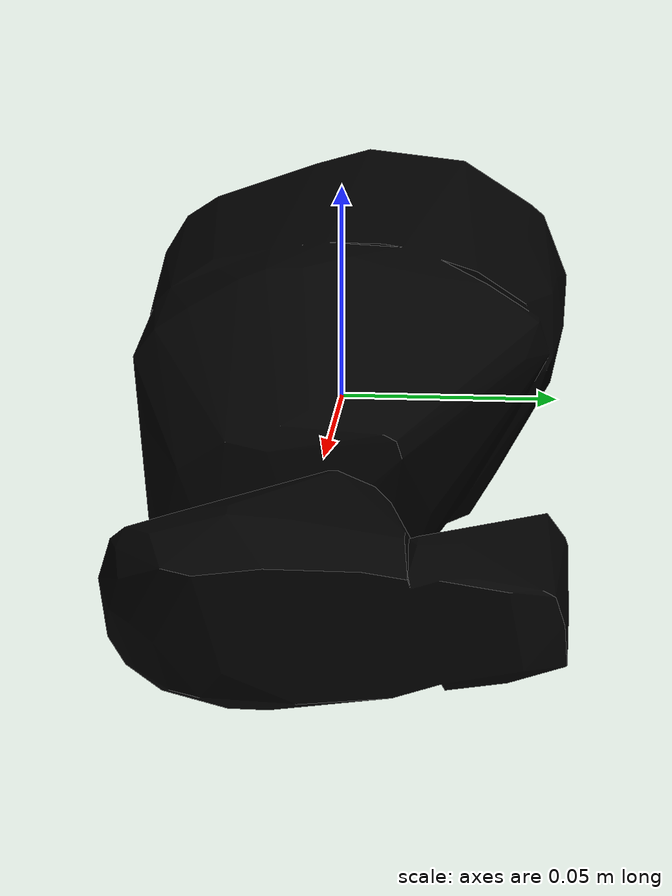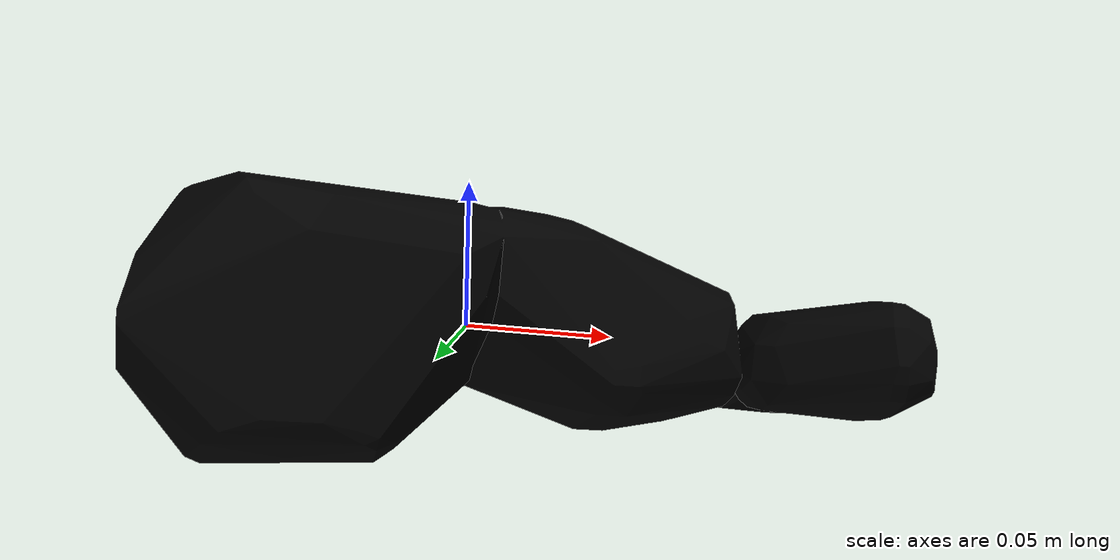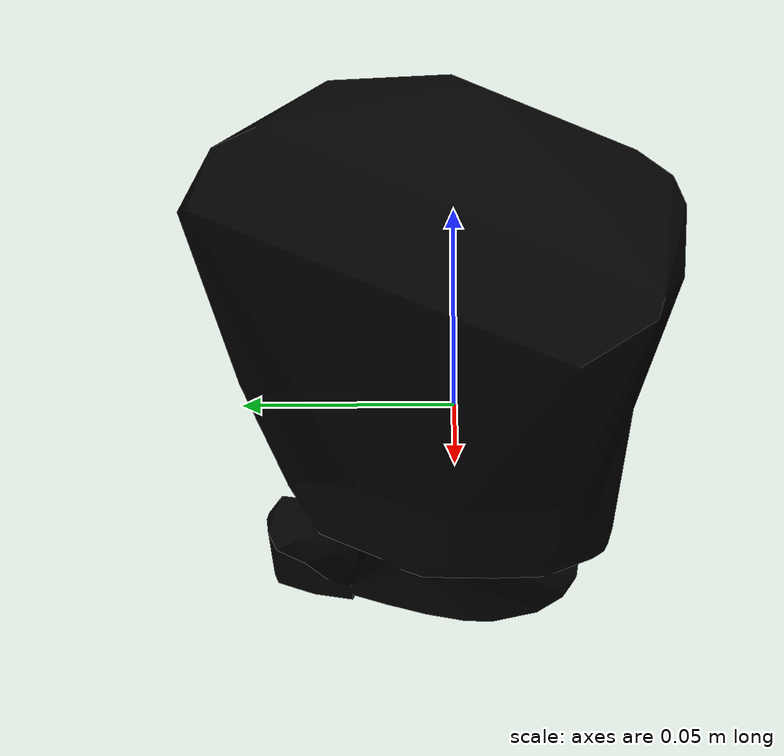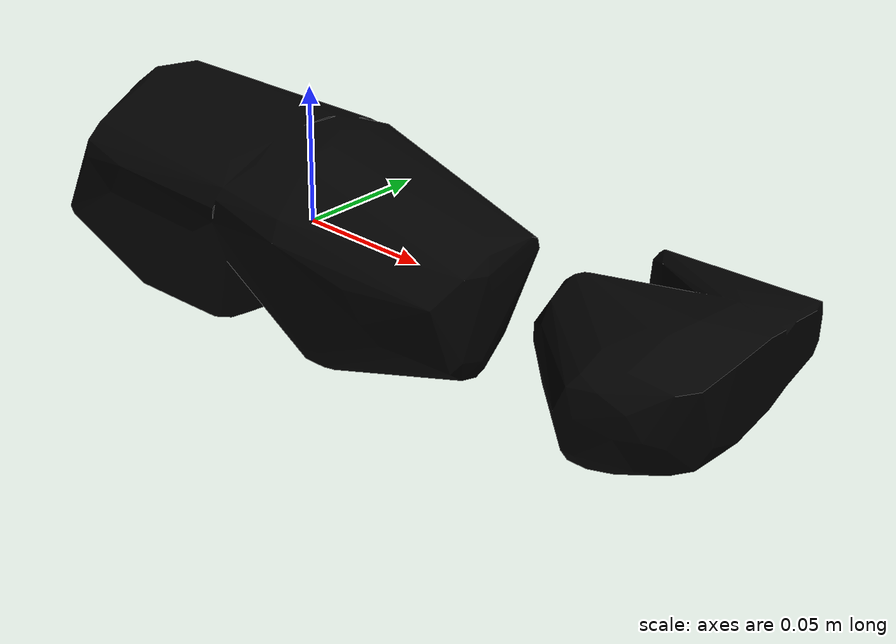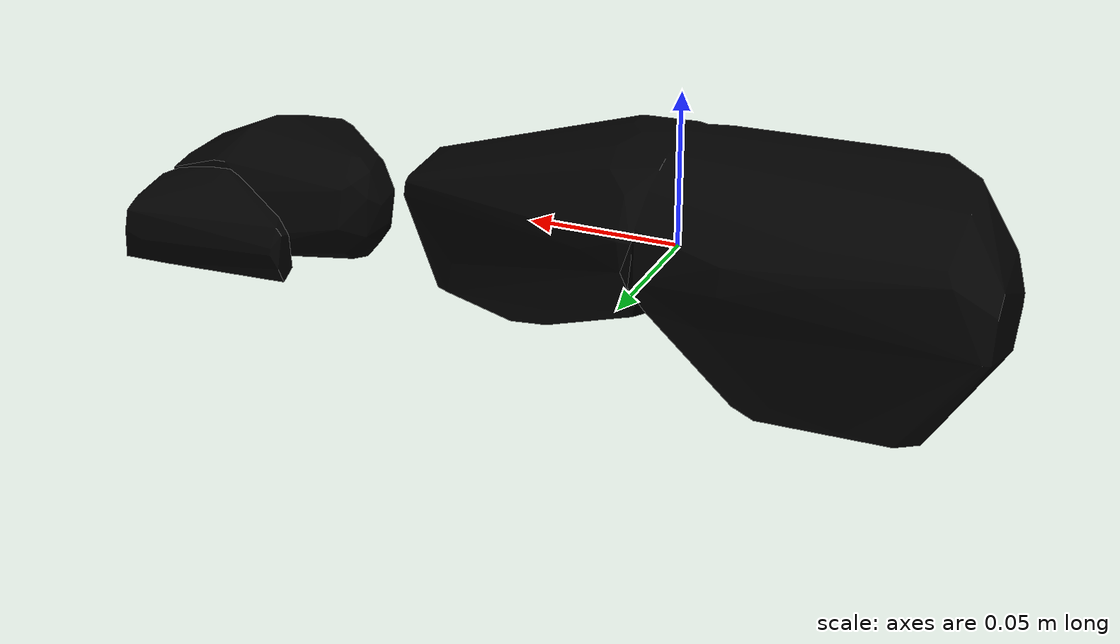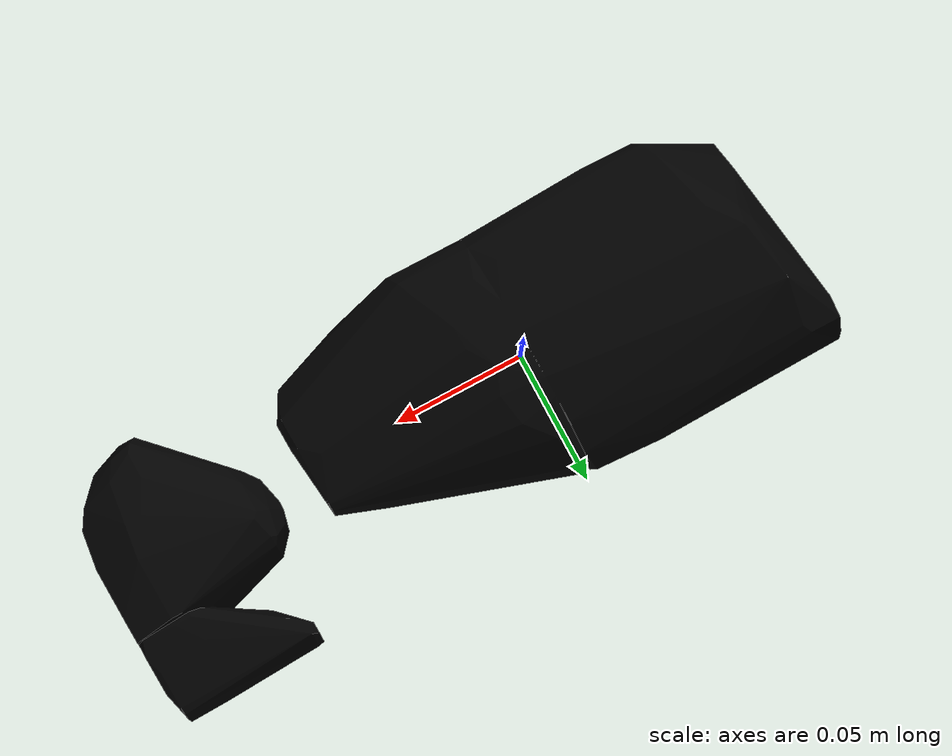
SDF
<?xml version="1.0"?>
<sdf version="1.4">
  <model name="022_windex_bottle_textured">
    <pose>0 0 0  0 0 0</pose>
    <link name="body">
      <inertial>
        <mass> 1.0 </mass>
        <pose>0 0 0 0 0 0</pose>
        <inertia>
          <ixx>0.0007133128671006749</ixx>
          <ixy>0.0</ixy>
          <ixz>0.0</ixz>
          <iyy>0.004743966013004487</iyy>
          <iyz>0.0</iyz>
          <izz>0.004894302072234842</izz>
        </inertia>
      </inertial>
      <visual name="visual">
        <geometry>
          <mesh>
            <uri>model://022_windex_bottle_textured/textured.dae</uri>
          </mesh>
        </geometry>
        <pose>-0.10208802437485508 -0.014744192388595034 0.010268240771119973 1.5547137074943616 1.2654117696587595 1.5800290462332287</pose>
      </visual>
      <collision name="collision">
        <geometry>
          <mesh>
            <uri>model://022_windex_bottle_textured/textured.col.dae</uri>
          </mesh>
        </geometry>
        <max_contacts>10</max_contacts>
        <surface>
          <friction>
            <ode>
              <mu>0.8</mu>
              <mu2>0.8</mu2>
              <slip1>0</slip1>
              <slip2>0</slip2>
            </ode>
            <torsional>
              <ode/>
            </torsional>
          </friction>
          <contact>
            <ode>
              <kp>1000000.0</kp>
              <kd>1.0</kd>
              <max_vel>0.0</max_vel>
            </ode>
          </contact>
        </surface>
        <pose>-0.10208802437485508 -0.014744192388595034 0.010268240771119973 1.5547137074943616 1.2654117696587595 1.5800290462332287</pose>
      </collision>
    </link>
  </model>
</sdf>
